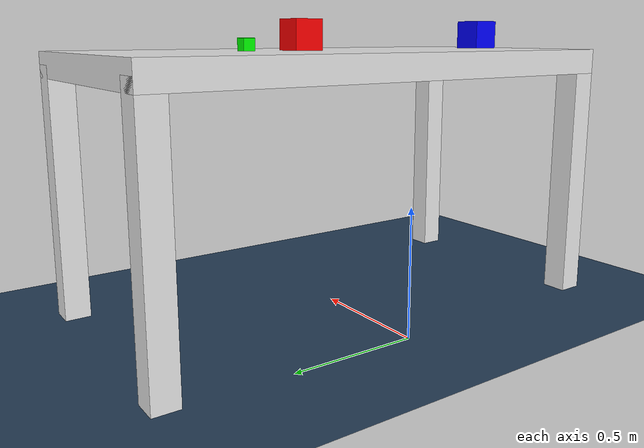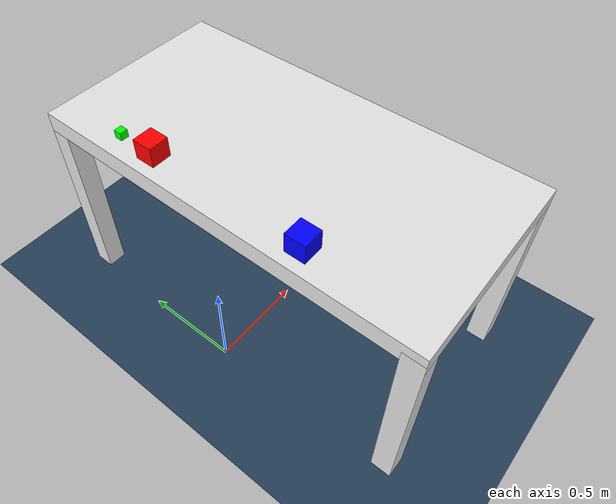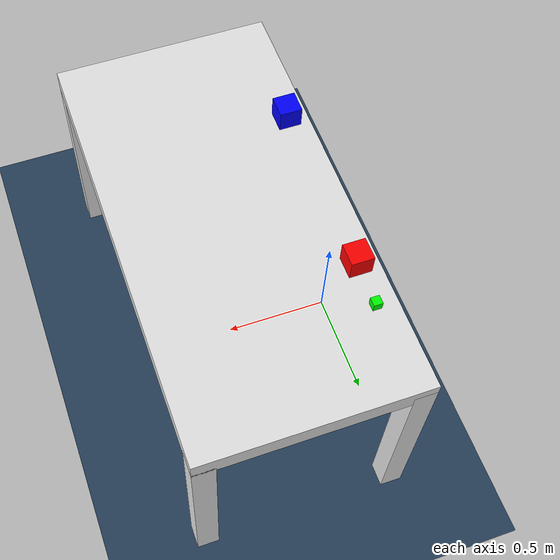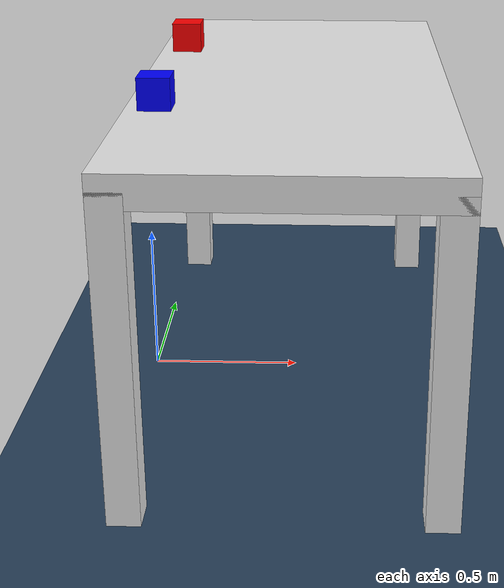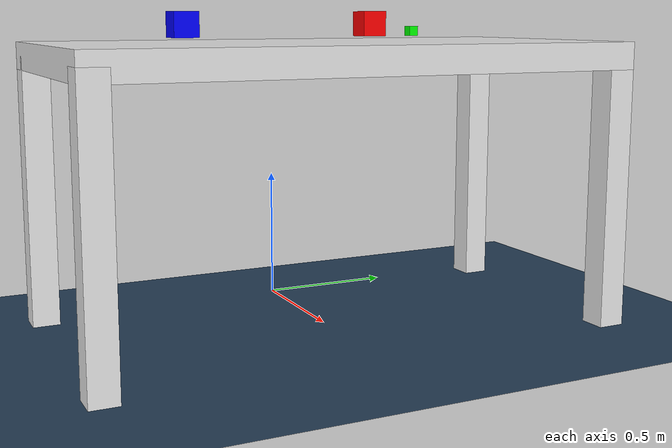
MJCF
<mujoco>
    <option timestep="0.001" integrator="RK4" gravity="0 0 -9.81" noslip_iterations="5" noslip_tolerance="1e-6">
        <flag energy="enable" contact="enable" />
    </option>

    <asset>
        <texture name="grid" type="2d" builtin="checker" width="512" height="512" rgb1=".1 .2 .3" rgb2=".2 .3 .4" />
        <material name="grid" texture="grid" texrepeat="1 1" texuniform="true" reflectance=".2" />
    </asset>

    <worldbody>
        <geom name="floor" size="0 0 .05" type="plane" material="grid" condim="4" friction="2 0.05 0.01" />
        <light diffuse=".5 .5 .5" pos="0 -1 5" dir="0 0 -1" />
        <light diffuse=".5 .5 .5" pos="0 1 5" dir="0 0 -1" />
    </worldbody>

    <worldbody>
        <body name="table" pos="0.5 0 1" quat="0.707 0.0 0.0 0.707">
            <geom type="box" size="1 .5 .05" rgba="0.9 0.9 .9 1" mass="6" condim="4" friction="2 0.05 0.01" />
            <geom type="box" pos=".95 .45 -.5" size=".05 .05 .5" rgba="0.9 0.9 .9 1" mass="1" />
            <geom type="box" pos="-.95 .45 -.5" size=".05 .05 .5" rgba="0.9 0.9 .9 1" mass="1" />
            <geom type="box" pos=".95 -.45 -.5" size=".05 .05 .5" rgba="0.9 0.9 .9 1" mass="1" />
            <geom type="box" pos="-.95 -.45 -.5" size=".05 .05 .5" rgba="0.9 0.9 .9 1" mass="1" />
        </body>

        <body name="grab_cube_1_ref" pos="0.1 -0.4 1.110" mocap="true" />
        <body name="grab_cube_2_ref" pos="0.1 0.4 1.110" mocap="true"/>

        <body name="grab_cube_1" pos="0.1 -0.4 1.110" >
            <freejoint/>
            <geom type="box" size=".05 .05 .05" rgba="0.0 0.0 1.0 1" mass="1" />
        </body>

        <body name="grab_cube_2" pos="0.1 0.4 1.110" >
            <freejoint/>
            <geom type="box" size=".05 .05 .05" rgba="1.0 0.0 0.0 1" mass="1" />
        </body>

        <body name="cube" pos="0.1 0.6 1.08" >
            <freejoint/>
            <geom type="box" size=".02 .02 .02" rgba="0.0 1.0 0.0 1" mass="0.1" />
        </body>
    </worldbody>

    <equality>
        <weld body1="grab_cube_1_ref" body2="grab_cube_1"/>
        <weld body1="grab_cube_2_ref" body2="grab_cube_2"/>
    </equality>
</mujoco>
